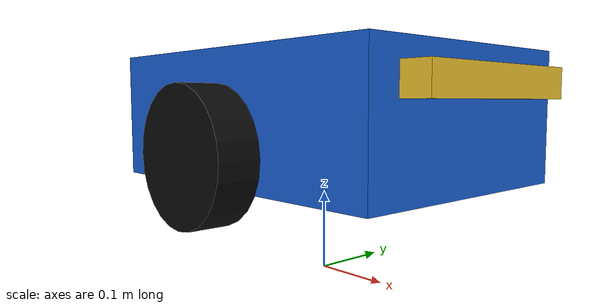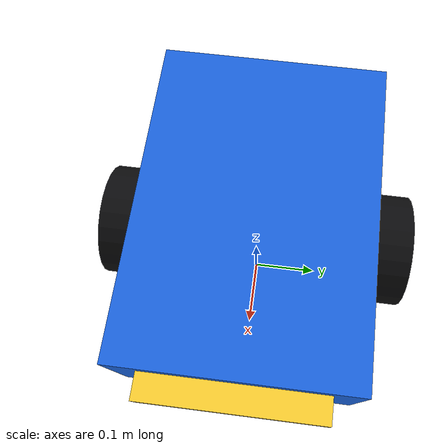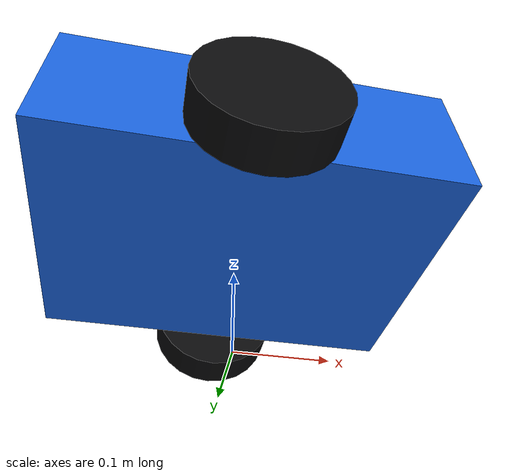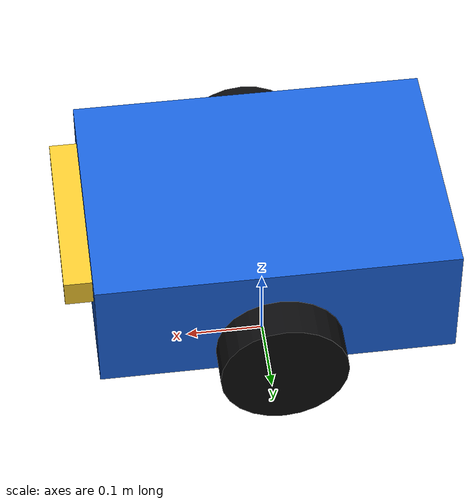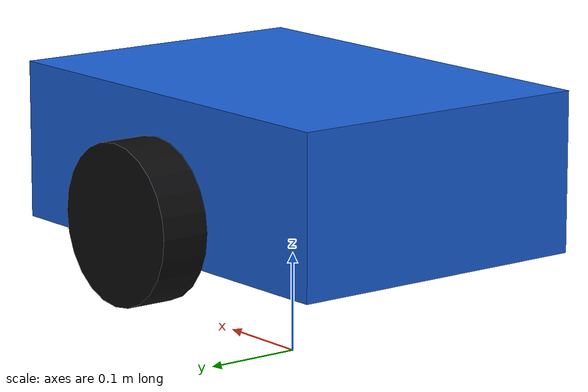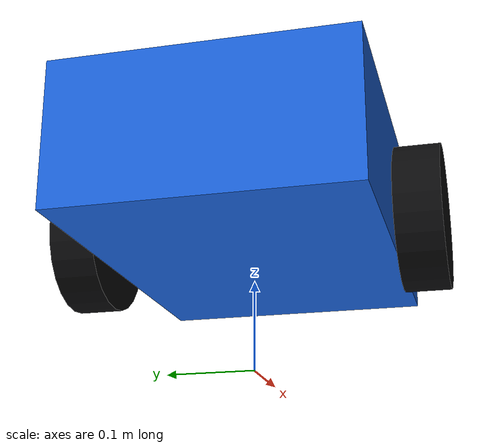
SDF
<?xml version="1.0"?>
<sdf version="1.9">
  <model name="coordination_diffbot">
    <static>false</static>
    <pose>0 0 0.08 0 0 0</pose>

    <link name="base_link">
      <inertial>
        <mass>4.0</mass>
        <inertia>
          <ixx>0.08</ixx>
          <iyy>0.10</iyy>
          <izz>0.12</izz>
          <ixy>0.0</ixy>
          <ixz>0.0</ixz>
          <iyz>0.0</iyz>
        </inertia>
      </inertial>
      <collision name="base_collision">
        <pose>0 0 0.12 0 0 0</pose>
        <geometry>
          <box>
            <size>0.45 0.32 0.16</size>
          </box>
        </geometry>
      </collision>
      <visual name="base_visual">
        <pose>0 0 0.12 0 0 0</pose>
        <geometry>
          <box>
            <size>0.45 0.32 0.16</size>
          </box>
        </geometry>
        <material>
          <ambient>0.1 0.38 0.85 1.0</ambient>
          <diffuse>0.1 0.38 0.85 1.0</diffuse>
        </material>
      </visual>
      <visual name="front_marker">
        <pose>0.24 0 0.16 0 0 0</pose>
        <geometry>
          <box>
            <size>0.04 0.24 0.035</size>
          </box>
        </geometry>
        <material>
          <ambient>0.95 0.78 0.18 1.0</ambient>
          <diffuse>0.95 0.78 0.18 1.0</diffuse>
        </material>
      </visual>
    </link>

    <link name="left_wheel">
      <pose>0 0.19 0.08 1.57079632679 0 0</pose>
      <inertial>
        <mass>0.45</mass>
        <inertia>
          <ixx>0.001</ixx>
          <iyy>0.001</iyy>
          <izz>0.001</izz>
          <ixy>0.0</ixy>
          <ixz>0.0</ixz>
          <iyz>0.0</iyz>
        </inertia>
      </inertial>
      <collision name="left_wheel_collision">
        <geometry>
          <cylinder>
            <radius>0.08</radius>
            <length>0.05</length>
          </cylinder>
        </geometry>
        <surface>
          <friction>
            <ode>
              <mu>1.0</mu>
              <mu2>1.0</mu2>
            </ode>
          </friction>
        </surface>
      </collision>
      <visual name="left_wheel_visual">
        <geometry>
          <cylinder>
            <radius>0.08</radius>
            <length>0.05</length>
          </cylinder>
        </geometry>
        <material>
          <ambient>0.04 0.04 0.045 1.0</ambient>
          <diffuse>0.04 0.04 0.045 1.0</diffuse>
        </material>
      </visual>
    </link>

    <link name="right_wheel">
      <pose>0 -0.19 0.08 1.57079632679 0 0</pose>
      <inertial>
        <mass>0.45</mass>
        <inertia>
          <ixx>0.001</ixx>
          <iyy>0.001</iyy>
          <izz>0.001</izz>
          <ixy>0.0</ixy>
          <ixz>0.0</ixz>
          <iyz>0.0</iyz>
        </inertia>
      </inertial>
      <collision name="right_wheel_collision">
        <geometry>
          <cylinder>
            <radius>0.08</radius>
            <length>0.05</length>
          </cylinder>
        </geometry>
        <surface>
          <friction>
            <ode>
              <mu>1.0</mu>
              <mu2>1.0</mu2>
            </ode>
          </friction>
        </surface>
      </collision>
      <visual name="right_wheel_visual">
        <geometry>
          <cylinder>
            <radius>0.08</radius>
            <length>0.05</length>
          </cylinder>
        </geometry>
        <material>
          <ambient>0.04 0.04 0.045 1.0</ambient>
          <diffuse>0.04 0.04 0.045 1.0</diffuse>
        </material>
      </visual>
    </link>

    <joint name="left_wheel_joint" type="revolute">
      <parent>base_link</parent>
      <child>left_wheel</child>
      <axis>
        <xyz>0 1 0</xyz>
        <limit>
          <lower>-1.0e16</lower>
          <upper>1.0e16</upper>
        </limit>
      </axis>
    </joint>

    <joint name="right_wheel_joint" type="revolute">
      <parent>base_link</parent>
      <child>right_wheel</child>
      <axis>
        <xyz>0 1 0</xyz>
        <limit>
          <lower>-1.0e16</lower>
          <upper>1.0e16</upper>
        </limit>
      </axis>
    </joint>

    <plugin filename="gz-sim-diff-drive-system" name="gz::sim::systems::DiffDrive">
      <left_joint>left_wheel_joint</left_joint>
      <right_joint>right_wheel_joint</right_joint>
      <wheel_separation>0.38</wheel_separation>
      <wheel_radius>0.08</wheel_radius>
      <odom_publish_frequency>30</odom_publish_frequency>
      <frame_id>odom</frame_id>
      <child_frame_id>base_link</child_frame_id>
      <max_linear_velocity>0.8</max_linear_velocity>
      <max_angular_velocity>1.8</max_angular_velocity>
      <max_linear_acceleration>1.0</max_linear_acceleration>
      <max_angular_acceleration>3.0</max_angular_acceleration>
    </plugin>
  </model>
</sdf>
